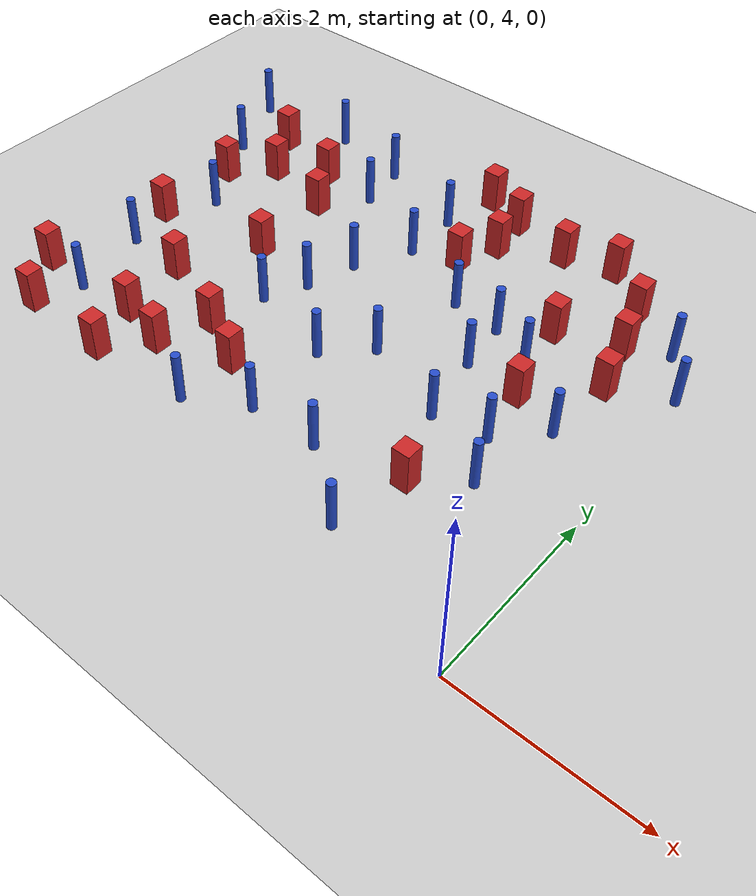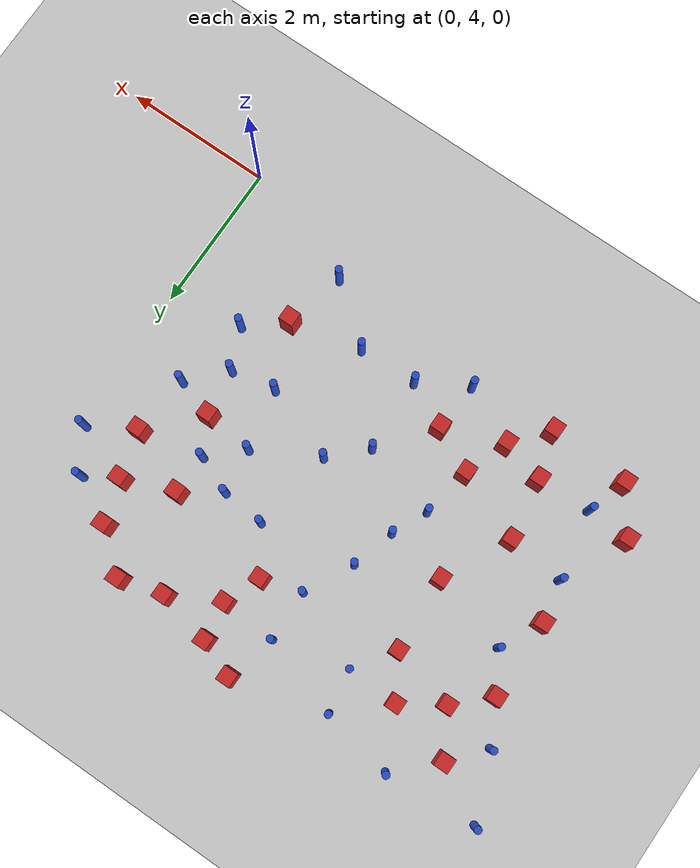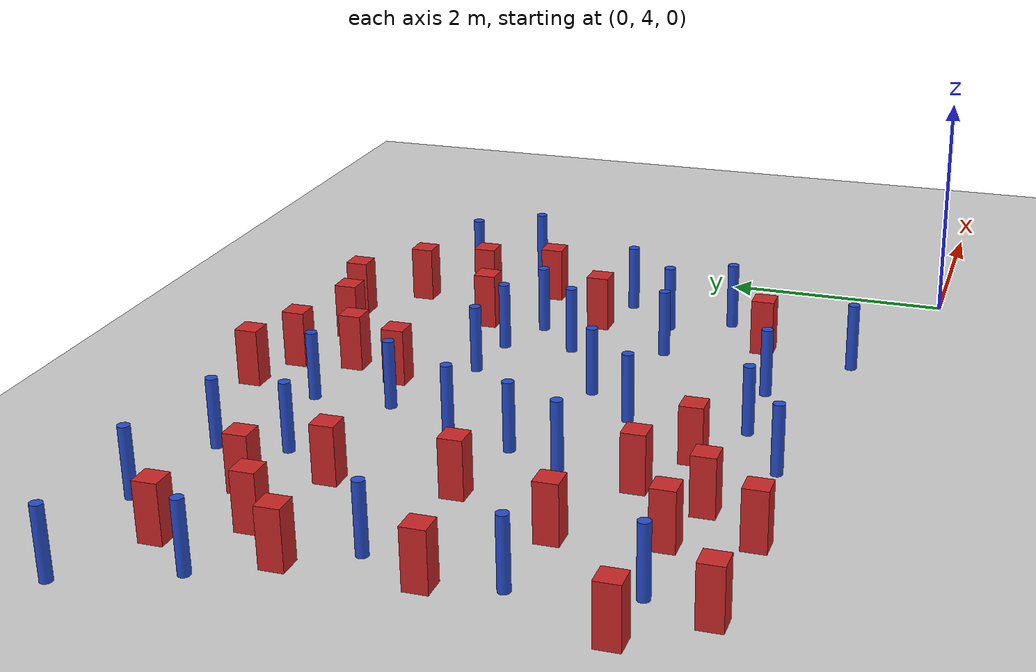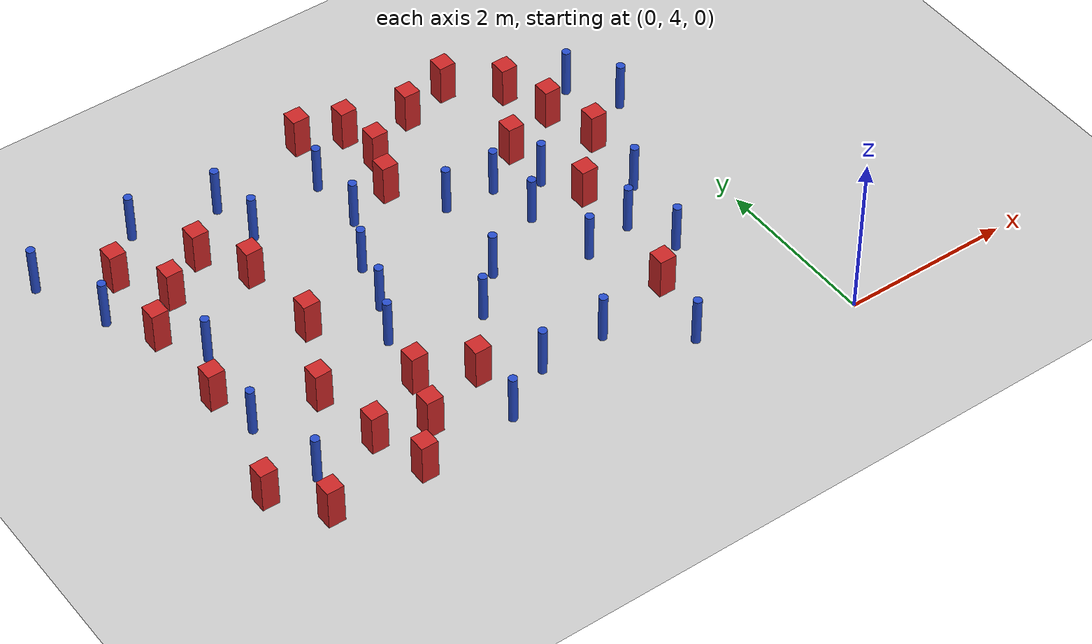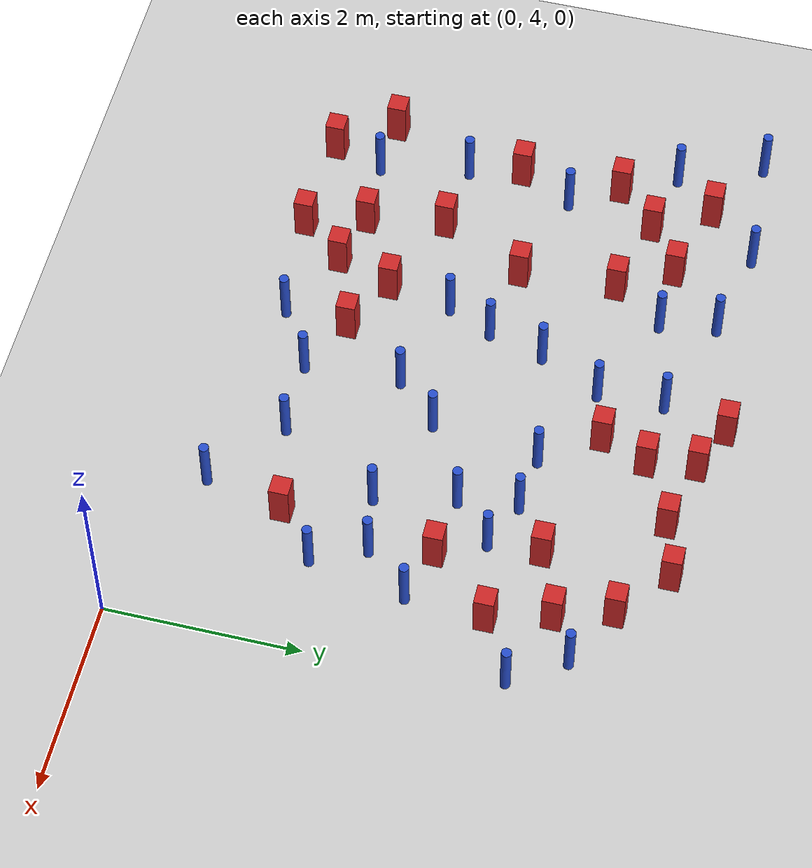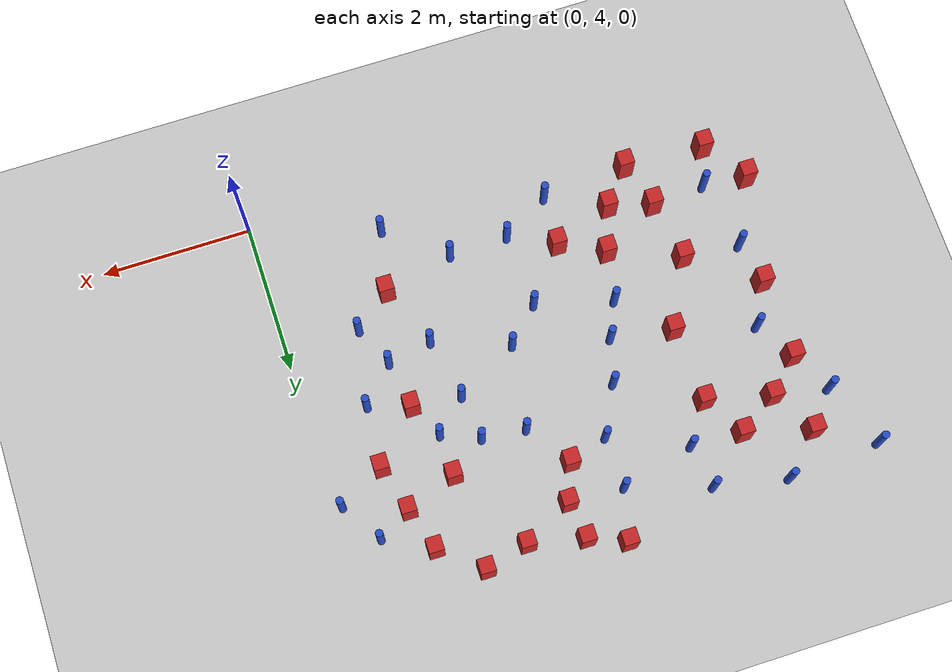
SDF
<sdf version="1.6">
 <world name="default">
  <model name="ground_plane">
   <static>1</static>
   <link name="link">
    <collision name="collision">
     <geometry><plane><normal>0 0 1</normal><size>100 100</size></plane></geometry>
     <surface><friction><ode><mu>100</mu><mu2>50</mu2></ode></friction></surface>
    </collision>
    <visual name="visual">
     <cast_shadows>0</cast_shadows>
     <geometry><plane><normal>0 0 1</normal><size>100 100</size></plane></geometry>
     <material>
      <ambient>1.0 1.0 1.0 1.0</ambient>
      <diffuse>0.8 0.8 0.8 1.0</diffuse>
      <specular>0.01 0.01 0.01 1.000000</specular>
     </material>
    </visual>
   </link>
  </model>
  <model name="pole_obstacle2">
   <static>true</static>
   <pose>-2.06542453884 7.65838804077 2.88873142074e-08 -9.90536689859e-09 4.60219948989e-07 -1.20965994961e-07</pose>
   <link name="link">
    <pose>0 0 0.3 0 -0 0</pose>
    <inertial>
     <mass>1</mass>
     <inertia><ixx>0.145833</ixx><ixy>0</ixy><ixz>0</ixz><iyy>0.145833</iyy><iyz>0</iyz><izz>0.125</izz></inertia>
    </inertial>
    <collision name="collision">
     <geometry><cylinder><radius>0.05</radius><length>.6</length></cylinder></geometry>
    </collision>
    <visual name="visual">
     <geometry><cylinder><radius>0.05</radius><length>.6</length></cylinder></geometry>
     <material>
      <script><name>Gazebo/Blue</name><uri>file://media/materials/scripts/gazebo.material</uri></script>
     </material>
    </visual>
   </link>
  </model>
  <model name="square_post_obstacle3">
   <static>true</static>
   <pose>-6.22019308932 7.83400990401 8.22691968438e-08 7.22125133819e-06 -7.54495500217e-07 2.29674213826e-05</pose>
   <link name="link">
    <pose>0 0 0.25 0 -0 0</pose>
    <inertial>
     <mass>100</mass>
     <inertia>
      <ixx>0.166667</ixx>
      <ixy>0</ixy>
      <ixz>0</ixz>
      <iyy>0.166667</iyy>
      <iyz>0</iyz>
      <izz>0.166667</izz>
     </inertia>
    </inertial>
    <collision name="collision"><geometry><box><size>.2 .2 .5</size></box></geometry></collision>
    <visual name="visual">
     <geometry><box><size>.2 .2 .5</size></box></geometry>
     <material>
      <script><name>Gazebo/Red</name><uri>file://media/materials/scripts/gazebo.material</uri></script>
     </material>
    </visual>
   </link>
  </model>
  <model name="square_post_obstacle7">
   <static>true</static>
   <pose>-3.04575474347 8.28717111365 8.22691968438e-08 7.2212513382e-06 -7.54495500217e-07 2.29674213826e-05</pose>
   <link name="link">
    <pose>0 0 0.25 0 -0 0</pose>
    <inertial>
     <mass>100</mass>
     <inertia>
      <ixx>0.166667</ixx>
      <ixy>0</ixy>
      <ixz>0</ixz>
      <iyy>0.166667</iyy>
      <iyz>0</iyz>
      <izz>0.166667</izz>
     </inertia>
    </inertial>
    <collision name="collision"><geometry><box><size>.2 .2 .5</size></box></geometry></collision>
    <visual name="visual">
     <geometry><box><size>.2 .2 .5</size></box></geometry>
     <material>
      <script><name>Gazebo/Red</name><uri>file://media/materials/scripts/gazebo.material</uri></script>
     </material>
    </visual>
   </link>
  </model>
  <model name="pole_obstacle9">
   <static>true</static>
   <pose>-0.113606203026 7.9641684089 2.88873142074e-08 -9.9053669038e-09 4.60219948976e-07 -1.20965994968e-07</pose>
   <link name="link">
    <pose>0 0 0.3 0 -0 0</pose>
    <inertial>
     <mass>1</mass>
     <inertia><ixx>0.145833</ixx><ixy>0</ixy><ixz>0</ixz><iyy>0.145833</iyy><iyz>0</iyz><izz>0.125</izz></inertia>
    </inertial>
    <collision name="collision">
     <geometry><cylinder><radius>0.05</radius><length>.6</length></cylinder></geometry>
    </collision>
    <visual name="visual">
     <geometry><cylinder><radius>0.05</radius><length>.6</length></cylinder></geometry>
     <material>
      <script><name>Gazebo/Blue</name><uri>file://media/materials/scripts/gazebo.material</uri></script>
     </material>
    </visual>
   </link>
  </model>
  <model name="pole_obstacle10">
   <static>true</static>
   <pose>-4.67073189763 9.15093612614 2.88873142074e-08 -9.9053668967e-09 4.60219948993e-07 -1.20965994957e-07</pose>
   <link name="link">
    <pose>0 0 0.3 0 -0 0</pose>
    <inertial>
     <mass>1</mass>
     <inertia><ixx>0.145833</ixx><ixy>0</ixy><ixz>0</ixz><iyy>0.145833</iyy><iyz>0</iyz><izz>0.125</izz></inertia>
    </inertial>
    <collision name="collision">
     <geometry><cylinder><radius>0.05</radius><length>.6</length></cylinder></geometry>
    </collision>
    <visual name="visual">
     <geometry><cylinder><radius>0.05</radius><length>.6</length></cylinder></geometry>
     <material>
      <script><name>Gazebo/Blue</name><uri>file://media/materials/scripts/gazebo.material</uri></script>
     </material>
    </visual>
   </link>
  </model>
  <model name="pole_obstacle13">
   <static>true</static>
   <pose>-3.25947055534 6.15746719498 2.88873142074e-08 -9.90536689859e-09 4.60219948989e-07 -1.20965994961e-07</pose>
   <link name="link">
    <pose>0 0 0.3 0 -0 0</pose>
    <inertial>
     <mass>1</mass>
     <inertia><ixx>0.145833</ixx><ixy>0</ixy><ixz>0</ixz><iyy>0.145833</iyy><iyz>0</iyz><izz>0.125</izz></inertia>
    </inertial>
    <collision name="collision">
     <geometry><cylinder><radius>0.05</radius><length>.6</length></cylinder></geometry>
    </collision>
    <visual name="visual">
     <geometry><cylinder><radius>0.05</radius><length>.6</length></cylinder></geometry>
     <material>
      <script><name>Gazebo/Blue</name><uri>file://media/materials/scripts/gazebo.material</uri></script>
     </material>
    </visual>
   </link>
  </model>
  <model name="square_post_obstacle14">
   <static>true</static>
   <pose>-1.48114246793 5.40035358558 8.22691968438e-08 7.2212513382e-06 -7.54495500217e-07 2.29674213826e-05</pose>
   <link name="link">
    <pose>0 0 0.25 0 -0 0</pose>
    <inertial>
     <mass>100</mass>
     <inertia>
      <ixx>0.166667</ixx>
      <ixy>0</ixy>
      <ixz>0</ixz>
      <iyy>0.166667</iyy>
      <iyz>0</iyz>
      <izz>0.166667</izz>
     </inertia>
    </inertial>
    <collision name="collision"><geometry><box><size>.2 .2 .5</size></box></geometry></collision>
    <visual name="visual">
     <geometry><box><size>.2 .2 .5</size></box></geometry>
     <material>
      <script><name>Gazebo/Red</name><uri>file://media/materials/scripts/gazebo.material</uri></script>
     </material>
    </visual>
   </link>
  </model>
  <model name="square_post_obstacle16">
   <static>true</static>
   <pose>-5.26272390022 8.59142701754 8.22691968438e-08 7.22125133819e-06 -7.54495500217e-07 2.29674213826e-05</pose>
   <link name="link">
    <pose>0 0 0.25 0 -0 0</pose>
    <inertial>
     <mass>100</mass>
     <inertia>
      <ixx>0.166667</ixx>
      <ixy>0</ixy>
      <ixz>0</ixz>
      <iyy>0.166667</iyy>
      <iyz>0</iyz>
      <izz>0.166667</izz>
     </inertia>
    </inertial>
    <collision name="collision"><geometry><box><size>.2 .2 .5</size></box></geometry></collision>
    <visual name="visual">
     <geometry><box><size>.2 .2 .5</size></box></geometry>
     <material>
      <script><name>Gazebo/Red</name><uri>file://media/materials/scripts/gazebo.material</uri></script>
     </material>
    </visual>
   </link>
  </model>
  <model name="square_post_obstacle23">
   <static>true</static>
   <pose>-3.4143512666 9.47555512349 8.22691968438e-08 7.2212513382e-06 -7.54495500217e-07 2.29674213826e-05</pose>
   <link name="link">
    <pose>0 0 0.25 0 -0 0</pose>
    <inertial>
     <mass>100</mass>
     <inertia>
      <ixx>0.166667</ixx>
      <ixy>0</ixy>
      <ixz>0</ixz>
      <iyy>0.166667</iyy>
      <iyz>0</iyz>
      <izz>0.166667</izz>
     </inertia>
    </inertial>
    <collision name="collision"><geometry><box><size>.2 .2 .5</size></box></geometry></collision>
    <visual name="visual">
     <geometry><box><size>.2 .2 .5</size></box></geometry>
     <material>
      <script><name>Gazebo/Red</name><uri>file://media/materials/scripts/gazebo.material</uri></script>
     </material>
    </visual>
   </link>
  </model>
  <model name="pole_obstacle35">
   <static>true</static>
   <pose>-3.89895842767 7.48414964836 2.88873142074e-08 -9.90536689859e-09 4.60219948989e-07 -1.20965994961e-07</pose>
   <link name="link">
    <pose>0 0 0.3 0 -0 0</pose>
    <inertial>
     <mass>1</mass>
     <inertia><ixx>0.145833</ixx><ixy>0</ixy><ixz>0</ixz><iyy>0.145833</iyy><iyz>0</iyz><izz>0.125</izz></inertia>
    </inertial>
    <collision name="collision">
     <geometry><cylinder><radius>0.05</radius><length>.6</length></cylinder></geometry>
    </collision>
    <visual name="visual">
     <geometry><cylinder><radius>0.05</radius><length>.6</length></cylinder></geometry>
     <material>
      <script><name>Gazebo/Blue</name><uri>file://media/materials/scripts/gazebo.material</uri></script>
     </material>
    </visual>
   </link>
  </model>
  <model name="square_post_obstacle37">
   <static>true</static>
   <pose>-2.19413517458 9.11411543472 8.22691968438e-08 7.22125133819e-06 -7.54495500217e-07 2.29674213826e-05</pose>
   <link name="link">
    <pose>0 0 0.25 0 -0 0</pose>
    <inertial>
     <mass>100</mass>
     <inertia>
      <ixx>0.166667</ixx>
      <ixy>0</ixy>
      <ixz>0</ixz>
      <iyy>0.166667</iyy>
      <iyz>0</iyz>
      <izz>0.166667</izz>
     </inertia>
    </inertial>
    <collision name="collision"><geometry><box><size>.2 .2 .5</size></box></geometry></collision>
    <visual name="visual">
     <geometry><box><size>.2 .2 .5</size></box></geometry>
     <material>
      <script><name>Gazebo/Red</name><uri>file://media/materials/scripts/gazebo.material</uri></script>
     </material>
    </visual>
   </link>
  </model>
  <model name="pole_obstacle51">
   <static>true</static>
   <pose>-1.98818045263 7.05100966082 2.88873142074e-08 -9.90536689721e-09 4.60219948992e-07 -1.20965994958e-07</pose>
   <link name="link">
    <pose>0 0 0.3 0 -0 0</pose>
    <inertial>
     <mass>1</mass>
     <inertia><ixx>0.145833</ixx><ixy>0</ixy><ixz>0</ixz><iyy>0.145833</iyy><iyz>0</iyz><izz>0.125</izz></inertia>
    </inertial>
    <collision name="collision">
     <geometry><cylinder><radius>0.05</radius><length>.6</length></cylinder></geometry>
    </collision>
    <visual name="visual">
     <geometry><cylinder><radius>0.05</radius><length>.6</length></cylinder></geometry>
     <material>
      <script><name>Gazebo/Blue</name><uri>file://media/materials/scripts/gazebo.material</uri></script>
     </material>
    </visual>
   </link>
  </model>
  <model name="square_post_obstacle45">
   <static>true</static>
   <pose>-6.20215918407 6.77021230163 8.22691968438e-08 7.22125133819e-06 -7.54495500217e-07 2.29674213826e-05</pose>
   <link name="link">
    <pose>0 0 0.25 0 -0 0</pose>
    <inertial>
     <mass>100</mass>
     <inertia>
      <ixx>0.166667</ixx>
      <ixy>0</ixy>
      <ixz>0</ixz>
      <iyy>0.166667</iyy>
      <iyz>0</iyz>
      <izz>0.166667</izz>
     </inertia>
    </inertial>
    <collision name="collision"><geometry><box><size>.2 .2 .5</size></box></geometry></collision>
    <visual name="visual">
     <geometry><box><size>.2 .2 .5</size></box></geometry>
     <material>
      <script><name>Gazebo/Red</name><uri>file://media/materials/scripts/gazebo.material</uri></script>
     </material>
    </visual>
   </link>
  </model>
  <model name="square_post_obstacle48">
   <static>true</static>
   <pose>-1.57961267575 7.99666446584 8.22691968438e-08 7.22125133819e-06 -7.54495500217e-07 2.29674213826e-05</pose>
   <link name="link">
    <pose>0 0 0.25 0 -0 0</pose>
    <inertial>
     <mass>100</mass>
     <inertia>
      <ixx>0.166667</ixx>
      <ixy>0</ixy>
      <ixz>0</ixz>
      <iyy>0.166667</iyy>
      <iyz>0</iyz>
      <izz>0.166667</izz>
     </inertia>
    </inertial>
    <collision name="collision"><geometry><box><size>.2 .2 .5</size></box></geometry></collision>
    <visual name="visual">
     <geometry><box><size>.2 .2 .5</size></box></geometry>
     <material>
      <script><name>Gazebo/Red</name><uri>file://media/materials/scripts/gazebo.material</uri></script>
     </material>
    </visual>
   </link>
  </model>
  <model name="pole_obstacle72">
   <static>true</static>
   <pose>-4.57429583736 8.56811374531 2.88873142074e-08 -9.9053668967e-09 4.60219948993e-07 -1.20965994957e-07</pose>
   <link name="link">
    <pose>0 0 0.3 0 -0 0</pose>
    <inertial>
     <mass>1</mass>
     <inertia><ixx>0.145833</ixx><ixy>0</ixy><ixz>0</ixz><iyy>0.145833</iyy><iyz>0</iyz><izz>0.125</izz></inertia>
    </inertial>
    <collision name="collision">
     <geometry><cylinder><radius>0.05</radius><length>.6</length></cylinder></geometry>
    </collision>
    <visual name="visual">
     <geometry><cylinder><radius>0.05</radius><length>.6</length></cylinder></geometry>
     <material>
      <script><name>Gazebo/Blue</name><uri>file://media/materials/scripts/gazebo.material</uri></script>
     </material>
    </visual>
   </link>
  </model>
  <model name="pole_obstacle76">
   <static>true</static>
   <pose>-6.52225871823 8.38881724046 2.88873142074e-08 -9.9053668967e-09 4.60219948993e-07 -1.20965994957e-07</pose>
   <link name="link">
    <pose>0 0 0.3 0 -0 0</pose>
    <inertial>
     <mass>1</mass>
     <inertia><ixx>0.145833</ixx><ixy>0</ixy><ixz>0</ixz><iyy>0.145833</iyy><iyz>0</iyz><izz>0.125</izz></inertia>
    </inertial>
    <collision name="collision">
     <geometry><cylinder><radius>0.05</radius><length>.6</length></cylinder></geometry>
    </collision>
    <visual name="visual">
     <geometry><cylinder><radius>0.05</radius><length>.6</length></cylinder></geometry>
     <material>
      <script><name>Gazebo/Blue</name><uri>file://media/materials/scripts/gazebo.material</uri></script>
     </material>
    </visual>
   </link>
  </model>
  <model name="pole_obstacle77">
   <static>true</static>
   <pose>-0.461922279163 8.50498473631 2.88873142074e-08 -9.90536690305e-09 4.60219948978e-07 -1.20965994968e-07</pose>
   <link name="link">
    <pose>0 0 0.3 0 -0 0</pose>
    <inertial>
     <mass>1</mass>
     <inertia><ixx>0.145833</ixx><ixy>0</ixy><ixz>0</ixz><iyy>0.145833</iyy><iyz>0</iyz><izz>0.125</izz></inertia>
    </inertial>
    <collision name="collision">
     <geometry><cylinder><radius>0.05</radius><length>.6</length></cylinder></geometry>
    </collision>
    <visual name="visual">
     <geometry><cylinder><radius>0.05</radius><length>.6</length></cylinder></geometry>
     <material>
      <script><name>Gazebo/Blue</name><uri>file://media/materials/scripts/gazebo.material</uri></script>
     </material>
    </visual>
   </link>
  </model>
  <model name="pole_obstacle85">
   <static>true</static>
   <pose>-5.63186800427 9.34180558317 2.88873142074e-08 -9.9053668967e-09 4.60219948993e-07 -1.20965994957e-07</pose>
   <link name="link">
    <pose>0 0 0.3 0 -0 0</pose>
    <inertial>
     <mass>1</mass>
     <inertia><ixx>0.145833</ixx><ixy>0</ixy><ixz>0</ixz><iyy>0.145833</iyy><iyz>0</iyz><izz>0.125</izz></inertia>
    </inertial>
    <collision name="collision">
     <geometry><cylinder><radius>0.05</radius><length>.6</length></cylinder></geometry>
    </collision>
    <visual name="visual">
     <geometry><cylinder><radius>0.05</radius><length>.6</length></cylinder></geometry>
     <material>
      <script><name>Gazebo/Blue</name><uri>file://media/materials/scripts/gazebo.material</uri></script>
     </material>
    </visual>
   </link>
  </model>
  <model name="square_post_obstacle75">
   <static>true</static>
   <pose>-6.09056868907 4.75491149112 8.22691968438e-08 7.22125133819e-06 -7.54495500217e-07 2.29674213826e-05</pose>
   <link name="link">
    <pose>0 0 0.25 0 -0 0</pose>
    <inertial>
     <mass>100</mass>
     <inertia>
      <ixx>0.166667</ixx>
      <ixy>0</ixy>
      <ixz>0</ixz>
      <iyy>0.166667</iyy>
      <iyz>0</iyz>
      <izz>0.166667</izz>
     </inertia>
    </inertial>
    <collision name="collision"><geometry><box><size>.2 .2 .5</size></box></geometry></collision>
    <visual name="visual">
     <geometry><box><size>.2 .2 .5</size></box></geometry>
     <material>
      <script><name>Gazebo/Red</name><uri>file://media/materials/scripts/gazebo.material</uri></script>
     </material>
    </visual>
   </link>
  </model>
  <model name="square_post_obstacle82">
   <static>true</static>
   <pose>-4.39697427874 5.76111625856 8.22691968438e-08 7.2212513382e-06 -7.54495500217e-07 2.29674213826e-05</pose>
   <link name="link">
    <pose>0 0 0.25 0 -0 0</pose>
    <inertial>
     <mass>100</mass>
     <inertia>
      <ixx>0.166667</ixx>
      <ixy>0</ixy>
      <ixz>0</ixz>
      <iyy>0.166667</iyy>
      <iyz>0</iyz>
      <izz>0.166667</izz>
     </inertia>
    </inertial>
    <collision name="collision"><geometry><box><size>.2 .2 .5</size></box></geometry></collision>
    <visual name="visual">
     <geometry><box><size>.2 .2 .5</size></box></geometry>
     <material>
      <script><name>Gazebo/Red</name><uri>file://media/materials/scripts/gazebo.material</uri></script>
     </material>
    </visual>
   </link>
  </model>
  <model name="square_post_obstacle86">
   <static>true</static>
   <pose>-0.732815887613 7.62451840899 8.22691968438e-08 7.2212513382e-06 -7.54495500217e-07 2.29674213826e-05</pose>
   <link name="link">
    <pose>0 0 0.25 0 -0 0</pose>
    <inertial>
     <mass>100</mass>
     <inertia>
      <ixx>0.166667</ixx>
      <ixy>0</ixy>
      <ixz>0</ixz>
      <iyy>0.166667</iyy>
      <iyz>0</iyz>
      <izz>0.166667</izz>
     </inertia>
    </inertial>
    <collision name="collision"><geometry><box><size>.2 .2 .5</size></box></geometry></collision>
    <visual name="visual">
     <geometry><box><size>.2 .2 .5</size></box></geometry>
     <material>
      <script><name>Gazebo/Red</name><uri>file://media/materials/scripts/gazebo.material</uri></script>
     </material>
    </visual>
   </link>
  </model>
  <model name="pole_obstacle100">
   <static>true</static>
   <pose>-3.85446770768 4.79012644996 2.88873142074e-08 -9.90536692062e-09 4.60219948937e-07 -1.20965994985e-07</pose>
   <link name="link">
    <pose>0 0 0.3 0 -0 0</pose>
    <inertial>
     <mass>1</mass>
     <inertia><ixx>0.145833</ixx><ixy>0</ixy><ixz>0</ixz><iyy>0.145833</iyy><iyz>0</iyz><izz>0.125</izz></inertia>
    </inertial>
    <collision name="collision">
     <geometry><cylinder><radius>0.05</radius><length>.6</length></cylinder></geometry>
    </collision>
    <visual name="visual">
     <geometry><cylinder><radius>0.05</radius><length>.6</length></cylinder></geometry>
     <material>
      <script><name>Gazebo/Blue</name><uri>file://media/materials/scripts/gazebo.material</uri></script>
     </material>
    </visual>
   </link>
  </model>
  <model name="square_post_obstacle95">
   <static>true</static>
   <pose>-6.13130929467 8.82955583165 8.22691968438e-08 7.22125133819e-06 -7.54495500217e-07 2.29674213826e-05</pose>
   <link name="link">
    <pose>0 0 0.25 0 -0 0</pose>
    <inertial>
     <mass>100</mass>
     <inertia>
      <ixx>0.166667</ixx>
      <ixy>0</ixy>
      <ixz>0</ixz>
      <iyy>0.166667</iyy>
      <iyz>0</iyz>
      <izz>0.166667</izz>
     </inertia>
    </inertial>
    <collision name="collision"><geometry><box><size>.2 .2 .5</size></box></geometry></collision>
    <visual name="visual">
     <geometry><box><size>.2 .2 .5</size></box></geometry>
     <material>
      <script><name>Gazebo/Red</name><uri>file://media/materials/scripts/gazebo.material</uri></script>
     </material>
    </visual>
   </link>
  </model>
  <model name="square_post_obstacle107">
   <static>true</static>
   <pose>-6.49814457836 5.32836846907 8.22691968438e-08 7.22125133819e-06 -7.54495500217e-07 2.29674213826e-05</pose>
   <link name="link">
    <pose>0 0 0.25 0 -0 0</pose>
    <inertial>
     <mass>100</mass>
     <inertia>
      <ixx>0.166667</ixx>
      <ixy>0</ixy>
      <ixz>0</ixz>
      <iyy>0.166667</iyy>
      <iyz>0</iyz>
      <izz>0.166667</izz>
     </inertia>
    </inertial>
    <collision name="collision"><geometry><box><size>.2 .2 .5</size></box></geometry></collision>
    <visual name="visual">
     <geometry><box><size>.2 .2 .5</size></box></geometry>
     <material>
      <script><name>Gazebo/Red</name><uri>file://media/materials/scripts/gazebo.material</uri></script>
     </material>
    </visual>
   </link>
  </model>
  <model name="pole_obstacle114">
   <static>true</static>
   <pose>-6.09430679497 6.20523068892 2.88873142074e-08 -9.90536690842e-09 4.60219948965e-07 -1.20965994976e-07</pose>
   <link name="link">
    <pose>0 0 0.3 0 -0 0</pose>
    <inertial>
     <mass>1</mass>
     <inertia><ixx>0.145833</ixx><ixy>0</ixy><ixz>0</ixz><iyy>0.145833</iyy><iyz>0</iyz><izz>0.125</izz></inertia>
    </inertial>
    <collision name="collision">
     <geometry><cylinder><radius>0.05</radius><length>.6</length></cylinder></geometry>
    </collision>
    <visual name="visual">
     <geometry><cylinder><radius>0.05</radius><length>.6</length></cylinder></geometry>
     <material>
      <script><name>Gazebo/Blue</name><uri>file://media/materials/scripts/gazebo.material</uri></script>
     </material>
    </visual>
   </link>
  </model>
  <model name="pole_obstacle119">
   <static>true</static>
   <pose>-2.64589634657 7.71554325002 2.88873142074e-08 -9.90536689859e-09 4.60219948989e-07 -1.20965994961e-07</pose>
   <link name="link">
    <pose>0 0 0.3 0 -0 0</pose>
    <inertial>
     <mass>1</mass>
     <inertia><ixx>0.145833</ixx><ixy>0</ixy><ixz>0</ixz><iyy>0.145833</iyy><iyz>0</iyz><izz>0.125</izz></inertia>
    </inertial>
    <collision name="collision">
     <geometry><cylinder><radius>0.05</radius><length>.6</length></cylinder></geometry>
    </collision>
    <visual name="visual">
     <geometry><cylinder><radius>0.05</radius><length>.6</length></cylinder></geometry>
     <material>
      <script><name>Gazebo/Blue</name><uri>file://media/materials/scripts/gazebo.material</uri></script>
     </material>
    </visual>
   </link>
  </model>
  <model name="pole_obstacle146">
   <static>true</static>
   <pose>-3.57365294057 8.12636009269 2.88873142074e-08 -9.90536692318e-09 4.6021994893e-07 -1.20965994988e-07</pose>
   <link name="link">
    <pose>0 0 0.3 0 -0 0</pose>
    <inertial>
     <mass>1</mass>
     <inertia><ixx>0.145833</ixx><ixy>0</ixy><ixz>0</ixz><iyy>0.145833</iyy><iyz>0</iyz><izz>0.125</izz></inertia>
    </inertial>
    <collision name="collision">
     <geometry><cylinder><radius>0.05</radius><length>.6</length></cylinder></geometry>
    </collision>
    <visual name="visual">
     <geometry><cylinder><radius>0.05</radius><length>.6</length></cylinder></geometry>
     <material>
      <script><name>Gazebo/Blue</name><uri>file://media/materials/scripts/gazebo.material</uri></script>
     </material>
    </visual>
   </link>
  </model>
  <model name="pole_obstacle147">
   <static>true</static>
   <pose>-3.59022938022 8.81500340856 2.88873142074e-08 -9.90536692318e-09 4.6021994893e-07 -1.20965994988e-07</pose>
   <link name="link">
    <pose>0 0 0.3 0 -0 0</pose>
    <inertial>
     <mass>1</mass>
     <inertia><ixx>0.145833</ixx><ixy>0</ixy><ixz>0</ixz><iyy>0.145833</iyy><iyz>0</iyz><izz>0.125</izz></inertia>
    </inertial>
    <collision name="collision">
     <geometry><cylinder><radius>0.05</radius><length>.6</length></cylinder></geometry>
    </collision>
    <visual name="visual">
     <geometry><cylinder><radius>0.05</radius><length>.6</length></cylinder></geometry>
     <material>
      <script><name>Gazebo/Blue</name><uri>file://media/materials/scripts/gazebo.material</uri></script>
     </material>
    </visual>
   </link>
  </model>
  <model name="pole_obstacle150">
   <static>true</static>
   <pose>-5.92222689624 5.27282686308 2.88873142074e-08 -9.90536690842e-09 4.60219948965e-07 -1.20965994976e-07</pose>
   <link name="link">
    <pose>0 0 0.3 0 -0 0</pose>
    <inertial>
     <mass>1</mass>
     <inertia><ixx>0.145833</ixx><ixy>0</ixy><ixz>0</ixz><iyy>0.145833</iyy><iyz>0</iyz><izz>0.125</izz></inertia>
    </inertial>
    <collision name="collision">
     <geometry><cylinder><radius>0.05</radius><length>.6</length></cylinder></geometry>
    </collision>
    <visual name="visual">
     <geometry><cylinder><radius>0.05</radius><length>.6</length></cylinder></geometry>
     <material>
      <script><name>Gazebo/Blue</name><uri>file://media/materials/scripts/gazebo.material</uri></script>
     </material>
    </visual>
   </link>
  </model>
  <model name="square_post_obstacle148">
   <static>true</static>
   <pose>-4.61269730788 5.16970509982 8.22691968438e-08 7.2212513382e-06 -7.54495500217e-07 2.29674213826e-05</pose>
   <link name="link">
    <pose>0 0 0.25 0 -0 0</pose>
    <inertial>
     <mass>100</mass>
     <inertia>
      <ixx>0.166667</ixx>
      <ixy>0</ixy>
      <ixz>0</ixz>
      <iyy>0.166667</iyy>
      <iyz>0</iyz>
      <izz>0.166667</izz>
     </inertia>
    </inertial>
    <collision name="collision"><geometry><box><size>.2 .2 .5</size></box></geometry></collision>
    <visual name="visual">
     <geometry><box><size>.2 .2 .5</size></box></geometry>
     <material>
      <script><name>Gazebo/Red</name><uri>file://media/materials/scripts/gazebo.material</uri></script>
     </material>
    </visual>
   </link>
  </model>
  <model name="pole_obstacle154">
   <static>true</static>
   <pose>-1.22794937467 6.34129450959 2.88873142074e-08 -9.90536689852e-09 4.60219948989e-07 -1.2096599496e-07</pose>
   <link name="link">
    <pose>0 0 0.3 0 -0 0</pose>
    <inertial>
     <mass>1</mass>
     <inertia><ixx>0.145833</ixx><ixy>0</ixy><ixz>0</ixz><iyy>0.145833</iyy><iyz>0</iyz><izz>0.125</izz></inertia>
    </inertial>
    <collision name="collision">
     <geometry><cylinder><radius>0.05</radius><length>.6</length></cylinder></geometry>
    </collision>
    <visual name="visual">
     <geometry><cylinder><radius>0.05</radius><length>.6</length></cylinder></geometry>
     <material>
      <script><name>Gazebo/Blue</name><uri>file://media/materials/scripts/gazebo.material</uri></script>
     </material>
    </visual>
   </link>
  </model>
  <model name="square_post_obstacle151">
   <static>true</static>
   <pose>-5.00357162475 4.70130885883 8.22691968438e-08 7.2212513382e-06 -7.54495500217e-07 2.29674213826e-05</pose>
   <link name="link">
    <pose>0 0 0.25 0 -0 0</pose>
    <inertial>
     <mass>100</mass>
     <inertia>
      <ixx>0.166667</ixx>
      <ixy>0</ixy>
      <ixz>0</ixz>
      <iyy>0.166667</iyy>
      <iyz>0</iyz>
      <izz>0.166667</izz>
     </inertia>
    </inertial>
    <collision name="collision"><geometry><box><size>.2 .2 .5</size></box></geometry></collision>
    <visual name="visual">
     <geometry><box><size>.2 .2 .5</size></box></geometry>
     <material>
      <script><name>Gazebo/Red</name><uri>file://media/materials/scripts/gazebo.material</uri></script>
     </material>
    </visual>
   </link>
  </model>
  <model name="pole_obstacle161">
   <static>true</static>
   <pose>-5.92803954759 7.32455500197 2.88873142074e-08 -9.90536690842e-09 4.60219948965e-07 -1.20965994976e-07</pose>
   <link name="link">
    <pose>0 0 0.3 0 -0 0</pose>
    <inertial>
     <mass>1</mass>
     <inertia><ixx>0.145833</ixx><ixy>0</ixy><ixz>0</ixz><iyy>0.145833</iyy><iyz>0</iyz><izz>0.125</izz></inertia>
    </inertial>
    <collision name="collision">
     <geometry><cylinder><radius>0.05</radius><length>.6</length></cylinder></geometry>
    </collision>
    <visual name="visual">
     <geometry><cylinder><radius>0.05</radius><length>.6</length></cylinder></geometry>
     <material>
      <script><name>Gazebo/Blue</name><uri>file://media/materials/scripts/gazebo.material</uri></script>
     </material>
    </visual>
   </link>
  </model>
  <model name="pole_obstacle165">
   <static>true</static>
   <pose>-6.87094337459 9.25075398083 2.88873142074e-08 -9.9053668967e-09 4.60219948993e-07 -1.20965994957e-07</pose>
   <link name="link">
    <pose>0 0 0.3 0 -0 0</pose>
    <inertial>
     <mass>1</mass>
     <inertia><ixx>0.145833</ixx><ixy>0</ixy><ixz>0</ixz><iyy>0.145833</iyy><iyz>0</iyz><izz>0.125</izz></inertia>
    </inertial>
    <collision name="collision">
     <geometry><cylinder><radius>0.05</radius><length>.6</length></cylinder></geometry>
    </collision>
    <visual name="visual">
     <geometry><cylinder><radius>0.05</radius><length>.6</length></cylinder></geometry>
     <material>
      <script><name>Gazebo/Blue</name><uri>file://media/materials/scripts/gazebo.material</uri></script>
     </material>
    </visual>
   </link>
  </model>
  <model name="square_post_obstacle162">
   <static>true</static>
   <pose>-0.901398866375 8.25149516119 8.22691968438e-08 7.22125133819e-06 -7.54495500217e-07 2.29674213826e-05</pose>
   <link name="link">
    <pose>0 0 0.25 0 -0 0</pose>
    <inertial>
     <mass>100</mass>
     <inertia>
      <ixx>0.166667</ixx>
      <ixy>0</ixy>
      <ixz>0</ixz>
      <iyy>0.166667</iyy>
      <iyz>0</iyz>
      <izz>0.166667</izz>
     </inertia>
    </inertial>
    <collision name="collision"><geometry><box><size>.2 .2 .5</size></box></geometry></collision>
    <visual name="visual">
     <geometry><box><size>.2 .2 .5</size></box></geometry>
     <material>
      <script><name>Gazebo/Red</name><uri>file://media/materials/scripts/gazebo.material</uri></script>
     </material>
    </visual>
   </link>
  </model>
  <model name="pole_obstacle166">
   <static>true</static>
   <pose>-1.66366379713 4.57512772268 2.88873142074e-08 -9.90536689852e-09 4.60219948989e-07 -1.2096599496e-07</pose>
   <link name="link">
    <pose>0 0 0.3 0 -0 0</pose>
    <inertial>
     <mass>1</mass>
     <inertia><ixx>0.145833</ixx><ixy>0</ixy><ixz>0</ixz><iyy>0.145833</iyy><iyz>0</iyz><izz>0.125</izz></inertia>
    </inertial>
    <collision name="collision">
     <geometry><cylinder><radius>0.05</radius><length>.6</length></cylinder></geometry>
    </collision>
    <visual name="visual">
     <geometry><cylinder><radius>0.05</radius><length>.6</length></cylinder></geometry>
     <material>
      <script><name>Gazebo/Blue</name><uri>file://media/materials/scripts/gazebo.material</uri></script>
     </material>
    </visual>
   </link>
  </model>
  <model name="square_post_obstacle174">
   <static>true</static>
   <pose>-1.07711926104 8.8267268094 8.22691968438e-08 7.22125133819e-06 -7.54495500217e-07 2.29674213826e-05</pose>
   <link name="link">
    <pose>0 0 0.25 0 -0 0</pose>
    <inertial>
     <mass>100</mass>
     <inertia>
      <ixx>0.166667</ixx>
      <ixy>0</ixy>
      <ixz>0</ixz>
      <iyy>0.166667</iyy>
      <iyz>0</iyz>
      <izz>0.166667</izz>
     </inertia>
    </inertial>
    <collision name="collision"><geometry><box><size>.2 .2 .5</size></box></geometry></collision>
    <visual name="visual">
     <geometry><box><size>.2 .2 .5</size></box></geometry>
     <material>
      <script><name>Gazebo/Red</name><uri>file://media/materials/scripts/gazebo.material</uri></script>
     </material>
    </visual>
   </link>
  </model>
  <model name="pole_obstacle177">
   <static>true</static>
   <pose>-0.985897568583 5.80148665359 2.88873142074e-08 -9.90536689644e-09 4.60219948994e-07 -1.20965994957e-07</pose>
   <link name="link">
    <pose>0 0 0.3 0 -0 0</pose>
    <inertial>
     <mass>1</mass>
     <inertia><ixx>0.145833</ixx><ixy>0</ixy><ixz>0</ixz><iyy>0.145833</iyy><iyz>0</iyz><izz>0.125</izz></inertia>
    </inertial>
    <collision name="collision">
     <geometry><cylinder><radius>0.05</radius><length>.6</length></cylinder></geometry>
    </collision>
    <visual name="visual">
     <geometry><cylinder><radius>0.05</radius><length>.6</length></cylinder></geometry>
     <material>
      <script><name>Gazebo/Blue</name><uri>file://media/materials/scripts/gazebo.material</uri></script>
     </material>
    </visual>
   </link>
  </model>
  <model name="pole_obstacle181">
   <static>true</static>
   <pose>-4.06401021409 6.8993823968 2.88873142074e-08 -9.90536690842e-09 4.60219948965e-07 -1.20965994976e-07</pose>
   <link name="link">
    <pose>0 0 0.3 0 -0 0</pose>
    <inertial>
     <mass>1</mass>
     <inertia><ixx>0.145833</ixx><ixy>0</ixy><ixz>0</ixz><iyy>0.145833</iyy><iyz>0</iyz><izz>0.125</izz></inertia>
    </inertial>
    <collision name="collision">
     <geometry><cylinder><radius>0.05</radius><length>.6</length></cylinder></geometry>
    </collision>
    <visual name="visual">
     <geometry><cylinder><radius>0.05</radius><length>.6</length></cylinder></geometry>
     <material>
      <script><name>Gazebo/Blue</name><uri>file://media/materials/scripts/gazebo.material</uri></script>
     </material>
    </visual>
   </link>
  </model>
  <model name="square_post_obstacle182">
   <static>true</static>
   <pose>-3.8111544931 5.46468395405 8.22691968438e-08 7.2212513382e-06 -7.54495500217e-07 2.29674213826e-05</pose>
   <link name="link">
    <pose>0 0 0.25 0 -0 0</pose>
    <inertial>
     <mass>100</mass>
     <inertia>
      <ixx>0.166667</ixx>
      <ixy>0</ixy>
      <ixz>0</ixz>
      <iyy>0.166667</iyy>
      <iyz>0</iyz>
      <izz>0.166667</izz>
     </inertia>
    </inertial>
    <collision name="collision"><geometry><box><size>.2 .2 .5</size></box></geometry></collision>
    <visual name="visual">
     <geometry><box><size>.2 .2 .5</size></box></geometry>
     <material>
      <script><name>Gazebo/Red</name><uri>file://media/materials/scripts/gazebo.material</uri></script>
     </material>
    </visual>
   </link>
  </model>
  <model name="pole_obstacle186">
   <static>true</static>
   <pose>-0.791931456045 6.80994155771 2.88873142074e-08 -9.90536689661e-09 4.60219948993e-07 -1.20965994957e-07</pose>
   <link name="link">
    <pose>0 0 0.3 0 -0 0</pose>
    <inertial>
     <mass>1</mass>
     <inertia><ixx>0.145833</ixx><ixy>0</ixy><ixz>0</ixz><iyy>0.145833</iyy><iyz>0</iyz><izz>0.125</izz></inertia>
    </inertial>
    <collision name="collision">
     <geometry><cylinder><radius>0.05</radius><length>.6</length></cylinder></geometry>
    </collision>
    <visual name="visual">
     <geometry><cylinder><radius>0.05</radius><length>.6</length></cylinder></geometry>
     <material>
      <script><name>Gazebo/Blue</name><uri>file://media/materials/scripts/gazebo.material</uri></script>
     </material>
    </visual>
   </link>
  </model>
  <model name="square_post_obstacle190">
   <static>true</static>
   <pose>-4.8761132876 7.03185941224 8.22691968438e-08 7.22125133819e-06 -7.54495500217e-07 2.29674213826e-05</pose>
   <link name="link">
    <pose>0 0 0.25 0 -0 0</pose>
    <inertial>
     <mass>100</mass>
     <inertia>
      <ixx>0.166667</ixx>
      <ixy>0</ixy>
      <ixz>0</ixz>
      <iyy>0.166667</iyy>
      <iyz>0</iyz>
      <izz>0.166667</izz>
     </inertia>
    </inertial>
    <collision name="collision"><geometry><box><size>.2 .2 .5</size></box></geometry></collision>
    <visual name="visual">
     <geometry><box><size>.2 .2 .5</size></box></geometry>
     <material>
      <script><name>Gazebo/Red</name><uri>file://media/materials/scripts/gazebo.material</uri></script>
     </material>
    </visual>
   </link>
  </model>
  <model name="square_post_obstacle192">
   <static>true</static>
   <pose>-2.85442466642 8.77036252472 8.22691968438e-08 7.22125133819e-06 -7.54495500217e-07 2.29674213826e-05</pose>
   <link name="link">
    <pose>0 0 0.25 0 -0 0</pose>
    <inertial>
     <mass>100</mass>
     <inertia>
      <ixx>0.166667</ixx>
      <ixy>0</ixy>
      <ixz>0</ixz>
      <iyy>0.166667</iyy>
      <iyz>0</iyz>
      <izz>0.166667</izz>
     </inertia>
    </inertial>
    <collision name="collision"><geometry><box><size>.2 .2 .5</size></box></geometry></collision>
    <visual name="visual">
     <geometry><box><size>.2 .2 .5</size></box></geometry>
     <material>
      <script><name>Gazebo/Red</name><uri>file://media/materials/scripts/gazebo.material</uri></script>
     </material>
    </visual>
   </link>
  </model>
  <model name="square_post_obstacle196">
   <static>true</static>
   <pose>-4.93632737341 8.04225550994 8.22691968438e-08 7.22125133819e-06 -7.54495500217e-07 2.29674213826e-05</pose>
   <link name="link">
    <pose>0 0 0.25 0 -0 0</pose>
    <inertial>
     <mass>100</mass>
     <inertia>
      <ixx>0.166667</ixx>
      <ixy>0</ixy>
      <ixz>0</ixz>
      <iyy>0.166667</iyy>
      <iyz>0</iyz>
      <izz>0.166667</izz>
     </inertia>
    </inertial>
    <collision name="collision"><geometry><box><size>.2 .2 .5</size></box></geometry></collision>
    <visual name="visual">
     <geometry><box><size>.2 .2 .5</size></box></geometry>
     <material>
      <script><name>Gazebo/Red</name><uri>file://media/materials/scripts/gazebo.material</uri></script>
     </material>
    </visual>
   </link>
  </model>
  <model name="square_post_obstacle197">
   <static>true</static>
   <pose>-2.92318715105 9.27855510245 8.22691968438e-08 7.22125133819e-06 -7.54495500217e-07 2.29674213826e-05</pose>
   <link name="link">
    <pose>0 0 0.25 0 -0 0</pose>
    <inertial>
     <mass>100</mass>
     <inertia>
      <ixx>0.166667</ixx>
      <ixy>0</ixy>
      <ixz>0</ixz>
      <iyy>0.166667</iyy>
      <iyz>0</iyz>
      <izz>0.166667</izz>
     </inertia>
    </inertial>
    <collision name="collision"><geometry><box><size>.2 .2 .5</size></box></geometry></collision>
    <visual name="visual">
     <geometry><box><size>.2 .2 .5</size></box></geometry>
     <material>
      <script><name>Gazebo/Red</name><uri>file://media/materials/scripts/gazebo.material</uri></script>
     </material>
    </visual>
   </link>
  </model>
  <model name="pole_obstacle191">
   <static>true</static>
   <pose>-1.57013873457 7.45218018397 2.88873142074e-08 -9.90536689852e-09 4.60219948989e-07 -1.2096599496e-07</pose>
   <link name="link">
    <pose>0 0 0.3 0 -0 0</pose>
    <inertial>
     <mass>1</mass>
     <inertia><ixx>0.145833</ixx><ixy>0</ixy><ixz>0</ixz><iyy>0.145833</iyy><iyz>0</iyz><izz>0.125</izz></inertia>
    </inertial>
    <collision name="collision">
     <geometry><cylinder><radius>0.05</radius><length>.6</length></cylinder></geometry>
    </collision>
    <visual name="visual">
     <geometry><cylinder><radius>0.05</radius><length>.6</length></cylinder></geometry>
     <material>
      <script><name>Gazebo/Blue</name><uri>file://media/materials/scripts/gazebo.material</uri></script>
     </material>
    </visual>
   </link>
  </model>
  <model name="square_post_obstacle203">
   <static>true</static>
   <pose>-5.79037979728 8.25102654665 8.22691968438e-08 7.22125133819e-06 -7.54495500217e-07 2.29674213826e-05</pose>
   <link name="link">
    <pose>0 0 0.25 0 -0 0</pose>
    <inertial>
     <mass>100</mass>
     <inertia>
      <ixx>0.166667</ixx>
      <ixy>0</ixy>
      <ixz>0</ixz>
      <iyy>0.166667</iyy>
      <iyz>0</iyz>
      <izz>0.166667</izz>
     </inertia>
    </inertial>
    <collision name="collision"><geometry><box><size>.2 .2 .5</size></box></geometry></collision>
    <visual name="visual">
     <geometry><box><size>.2 .2 .5</size></box></geometry>
     <material>
      <script><name>Gazebo/Red</name><uri>file://media/materials/scripts/gazebo.material</uri></script>
     </material>
    </visual>
   </link>
  </model>
  <model name="pole_obstacle197">
   <static>true</static>
   <pose>-2.82146687148 6.5990859791 2.88873142074e-08 -9.90536689859e-09 4.60219948989e-07 -1.20965994961e-07</pose>
   <link name="link">
    <pose>0 0 0.3 0 -0 0</pose>
    <inertial>
     <mass>1</mass>
     <inertia><ixx>0.145833</ixx><ixy>0</ixy><ixz>0</ixz><iyy>0.145833</iyy><iyz>0</iyz><izz>0.125</izz></inertia>
    </inertial>
    <collision name="collision">
     <geometry><cylinder><radius>0.05</radius><length>.6</length></cylinder></geometry>
    </collision>
    <visual name="visual">
     <geometry><cylinder><radius>0.05</radius><length>.6</length></cylinder></geometry>
     <material>
      <script><name>Gazebo/Blue</name><uri>file://media/materials/scripts/gazebo.material</uri></script>
     </material>
    </visual>
   </link>
  </model>
  <model name="pole_obstacle202">
   <static>true</static>
   <pose>-4.27882072648 6.42818153769 2.88873142074e-08 -9.90536690842e-09 4.60219948965e-07 -1.20965994976e-07</pose>
   <link name="link">
    <pose>0 0 0.3 0 -0 0</pose>
    <inertial>
     <mass>1</mass>
     <inertia><ixx>0.145833</ixx><ixy>0</ixy><ixz>0</ixz><iyy>0.145833</iyy><iyz>0</iyz><izz>0.125</izz></inertia>
    </inertial>
    <collision name="collision">
     <geometry><cylinder><radius>0.05</radius><length>.6</length></cylinder></geometry>
    </collision>
    <visual name="visual">
     <geometry><cylinder><radius>0.05</radius><length>.6</length></cylinder></geometry>
     <material>
      <script><name>Gazebo/Blue</name><uri>file://media/materials/scripts/gazebo.material</uri></script>
     </material>
    </visual>
   </link>
  </model>
  <model name="pole_obstacle207">
   <static>true</static>
   <pose>-2.42600556015 5.18055958149 2.88873142074e-08 -9.90536689859e-09 4.60219948989e-07 -1.20965994961e-07</pose>
   <link name="link">
    <pose>0 0 0.3 0 -0 0</pose>
    <inertial>
     <mass>1</mass>
     <inertia><ixx>0.145833</ixx><ixy>0</ixy><ixz>0</ixz><iyy>0.145833</iyy><iyz>0</iyz><izz>0.125</izz></inertia>
    </inertial>
    <collision name="collision">
     <geometry><cylinder><radius>0.05</radius><length>.6</length></cylinder></geometry>
    </collision>
    <visual name="visual">
     <geometry><cylinder><radius>0.05</radius><length>.6</length></cylinder></geometry>
     <material>
      <script><name>Gazebo/Blue</name><uri>file://media/materials/scripts/gazebo.material</uri></script>
     </material>
    </visual>
   </link>
  </model>
  <model name="pole_obstacle211">
   <static>true</static>
   <pose>-3.21732665356 5.1594399082 2.88873142074e-08 -9.90536689859e-09 4.60219948989e-07 -1.20965994961e-07</pose>
   <link name="link">
    <pose>0 0 0.3 0 -0 0</pose>
    <inertial>
     <mass>1</mass>
     <inertia><ixx>0.145833</ixx><ixy>0</ixy><ixz>0</ixz><iyy>0.145833</iyy><iyz>0</iyz><izz>0.125</izz></inertia>
    </inertial>
    <collision name="collision">
     <geometry><cylinder><radius>0.05</radius><length>.6</length></cylinder></geometry>
    </collision>
    <visual name="visual">
     <geometry><cylinder><radius>0.05</radius><length>.6</length></cylinder></geometry>
     <material>
      <script><name>Gazebo/Blue</name><uri>file://media/materials/scripts/gazebo.material</uri></script>
     </material>
    </visual>
   </link>
  </model>
  <model name="pole_obstacle215">
   <static>true</static>
   <pose>-1.82211511649 6.23372628187 2.88873142074e-08 -9.90536689852e-09 4.60219948989e-07 -1.2096599496e-07</pose>
   <link name="link">
    <pose>0 0 0.3 0 -0 0</pose>
    <inertial>
     <mass>1</mass>
     <inertia><ixx>0.145833</ixx><ixy>0</ixy><ixz>0</ixz><iyy>0.145833</iyy><iyz>0</iyz><izz>0.125</izz></inertia>
    </inertial>
    <collision name="collision">
     <geometry><cylinder><radius>0.05</radius><length>.6</length></cylinder></geometry>
    </collision>
    <visual name="visual">
     <geometry><cylinder><radius>0.05</radius><length>.6</length></cylinder></geometry>
     <material>
      <script><name>Gazebo/Blue</name><uri>file://media/materials/scripts/gazebo.material</uri></script>
     </material>
    </visual>
   </link>
  </model>
  <model name="square_post_obstacle208">
   <static>true</static>
   <pose>-1.33465996738 6.97927996466 8.22691968438e-08 7.2212513382e-06 -7.54495500217e-07 2.29674213826e-05</pose>
   <link name="link">
    <pose>0 0 0.25 0 -0 0</pose>
    <inertial>
     <mass>100</mass>
     <inertia>
      <ixx>0.166667</ixx>
      <ixy>0</ixy>
      <ixz>0</ixz>
      <iyy>0.166667</iyy>
      <iyz>0</iyz>
      <izz>0.166667</izz>
     </inertia>
    </inertial>
    <collision name="collision"><geometry><box><size>.2 .2 .5</size></box></geometry></collision>
    <visual name="visual">
     <geometry><box><size>.2 .2 .5</size></box></geometry>
     <material>
      <script><name>Gazebo/Red</name><uri>file://media/materials/scripts/gazebo.material</uri></script>
     </material>
    </visual>
   </link>
  </model>
  <model name="square_post_obstacle209">
   <static>true</static>
   <pose>-5.18944996738 5.31943996466 8.22691968438e-08 7.22125133819e-06 -7.54495500217e-07 2.29674213826e-05</pose>
   <link name="link">
    <pose>0 0 0.25 0 -0 0</pose>
    <inertial>
     <mass>100</mass>
     <inertia>
      <ixx>0.166667</ixx>
      <ixy>0</ixy>
      <ixz>0</ixz>
      <iyy>0.166667</iyy>
      <iyz>0</iyz>
      <izz>0.166667</izz>
     </inertia>
    </inertial>
    <collision name="collision"><geometry><box><size>.2 .2 .5</size></box></geometry></collision>
    <visual name="visual">
     <geometry><box><size>.2 .2 .5</size></box></geometry>
     <material>
      <script><name>Gazebo/Red</name><uri>file://media/materials/scripts/gazebo.material</uri></script>
     </material>
    </visual>
   </link>
  </model>
  <model name="square_post_obstacle220">
   <static>true</static>
   <pose>-5.32470996738 6.13430996466 8.22691968438e-08 7.22125133819e-06 -7.54495500217e-07 2.29674213826e-05</pose>
   <link name="link">
    <pose>0 0 0.25 0 -0 0</pose>
    <inertial>
     <mass>100</mass>
     <inertia>
      <ixx>0.166667</ixx>
      <ixy>0</ixy>
      <ixz>0</ixz>
      <iyy>0.166667</iyy>
      <iyz>0</iyz>
      <izz>0.166667</izz>
     </inertia>
    </inertial>
    <collision name="collision"><geometry><box><size>.2 .2 .5</size></box></geometry></collision>
    <visual name="visual">
     <geometry><box><size>.2 .2 .5</size></box></geometry>
     <material>
      <script><name>Gazebo/Red</name><uri>file://media/materials/scripts/gazebo.material</uri></script>
     </material>
    </visual>
   </link>
  </model>
  <model name="square_post_obstacle224">
   <static>true</static>
   <pose>-1.61038996738 9.26833996466 8.22691968438e-08 7.22125133819e-06 -7.54495500217e-07 2.29674213826e-05</pose>
   <link name="link">
    <pose>0 0 0.25 0 -0 0</pose>
    <inertial>
     <mass>100</mass>
     <inertia>
      <ixx>0.166667</ixx>
      <ixy>0</ixy>
      <ixz>0</ixz>
      <iyy>0.166667</iyy>
      <iyz>0</iyz>
      <izz>0.166667</izz>
     </inertia>
    </inertial>
    <collision name="collision"><geometry><box><size>.2 .2 .5</size></box></geometry></collision>
    <visual name="visual">
     <geometry><box><size>.2 .2 .5</size></box></geometry>
     <material>
      <script><name>Gazebo/Red</name><uri>file://media/materials/scripts/gazebo.material</uri></script>
     </material>
    </visual>
   </link>
  </model>
 </world>
</sdf>
